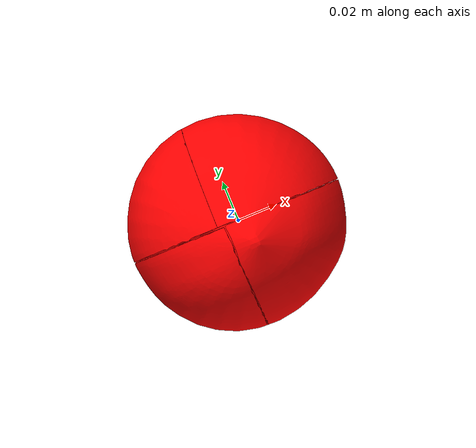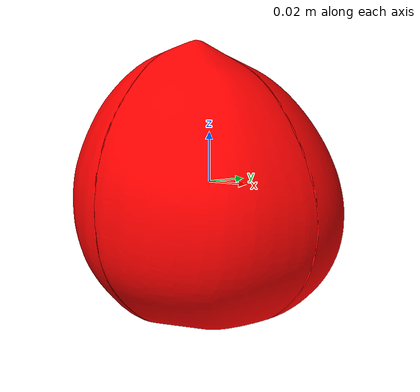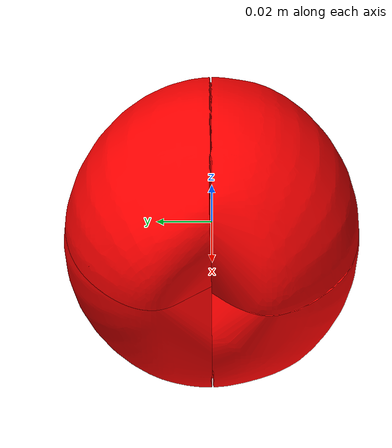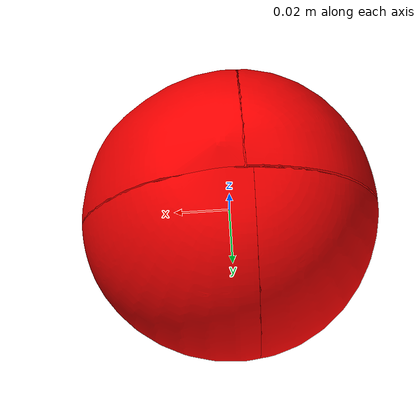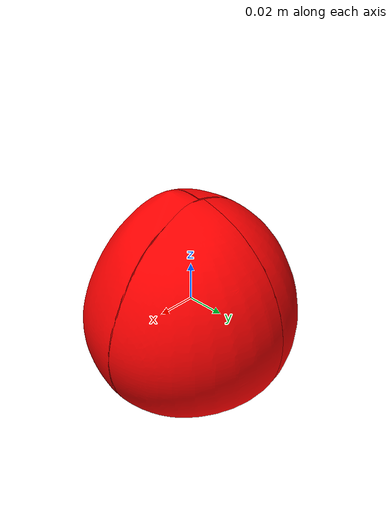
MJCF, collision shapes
<?xml version="1.0" ?>
<mujoco model="honey_peach">
	<compiler meshdir="honey_peach/meshes" texturedir="honey_peach/textures" angle="radian" autolimits="true" balanceinertia="true" boundmass="0.000001" boundinertia="0.000001"/>
	<default>
		<default class="visual">
			<geom contype="0" conaffinity="0"/>
		</default>
		<default class="collision">
			<geom rgba="1.0 0.0 0.0 0.0"/>
		</default>
	</default>
	<asset>
		<mesh name="HoneyPeachPeel" file="obj/HoneyPeachPeel.obj" scale="1.0 1.0 1.0"/>
		<mesh name="HoneyPeachPeel_001" file="stl/HoneyPeachPeel_001.stl" scale="1.0 1.0 1.0"/>
		<mesh name="HoneyPeachPeel_002" file="stl/HoneyPeachPeel_002.stl" scale="1.0 1.0 1.0"/>
		<mesh name="HoneyPeachPeel_003" file="stl/HoneyPeachPeel_003.stl" scale="1.0 1.0 1.0"/>
		<mesh name="HoneyPeachPeel_004" file="stl/HoneyPeachPeel_004.stl" scale="1.0 1.0 1.0"/>
		<mesh name="HoneyPeachFlesh" file="obj/HoneyPeachFlesh.obj" scale="1.0 1.0 1.0"/>
		<mesh name="HoneyPeachFlesh_001" file="stl/HoneyPeachFlesh_001.stl" scale="1.0 1.0 1.0"/>
		<mesh name="HoneyPeachFlesh_002" file="stl/HoneyPeachFlesh_002.stl" scale="1.0 1.0 1.0"/>
		<mesh name="HoneyPeachFlesh_003" file="stl/HoneyPeachFlesh_003.stl" scale="1.0 1.0 1.0"/>
		<mesh name="HoneyPeachFlesh_004" file="stl/HoneyPeachFlesh_004.stl" scale="1.0 1.0 1.0"/>
		<mesh name="HoneyPeachSeed" file="obj/HoneyPeachSeed.obj" scale="1.0 1.0 1.0"/>
		<mesh name="HoneyPeachSeed_001" file="stl/HoneyPeachSeed_001.stl" scale="1.0 1.0 1.0"/>
		<material name="M_HoneyPeachPeel" texture="T_HoneyPeachPeel"/>
		<material name="M_HoneyPeachFlesh" texture="T_HoneyPeachFlesh"/>
		<material name="M_HoneyPeachSeed" texture="T_HoneyPeachSeed"/>
		<texture name="T_HoneyPeachPeel" type="2d" file="T_HoneyPeachPeel.png"/>
		<texture name="T_HoneyPeachFlesh" type="2d" file="T_HoneyPeachFlesh.png"/>
		<texture name="T_HoneyPeachSeed" type="2d" file="T_HoneyPeachSeed.png"/>
	</asset>
	<worldbody>
		<body name="honey_peach" pos="0.0 0.0 0.0" quat="1.0 0.0 0.0 0.0">
			<body name="honey_peach_peel" pos="0.0 0.0 0.0" quat="1.0 0.0 0.0 0.0">
				<inertial mass="1.2212930917739868" pos="-0.0008010617457330227 -0.0005311282002367079 -0.005409484729170799" quat="-0.32978957891464233 0.41349121928215027 0.38312044739723206 0.7572863101959229" diaginertia="0.0013328577624633908 0.0014087659073993564 0.0014269620878621936"/>
				<geom name="HoneyPeachPeel" type="mesh" pos="0.0 0.0 0.0" quat="1.0 0.0 0.0 0.0" mesh="HoneyPeachPeel" material="M_HoneyPeachPeel" class="visual"/>
				<geom name="HoneyPeachPeel_001" type="mesh" pos="0.0 0.0 0.0" quat="1.0 0.0 0.0 0.0" mesh="HoneyPeachPeel_001" class="collision"/>
				<geom name="HoneyPeachPeel_002" type="mesh" pos="0.0 0.0 0.0" quat="1.0 0.0 0.0 0.0" mesh="HoneyPeachPeel_002" class="collision"/>
				<geom name="HoneyPeachPeel_003" type="mesh" pos="0.0 0.0 0.0" quat="1.0 0.0 0.0 0.0" mesh="HoneyPeachPeel_003" class="collision"/>
				<geom name="HoneyPeachPeel_004" type="mesh" pos="0.0 0.0 0.0" quat="1.0 0.0 0.0 0.0" mesh="HoneyPeachPeel_004" class="collision"/>
			</body>
			<body name="honey_peach_seed" pos="0.0 0.0 0.0" quat="1.0 0.0 0.0 0.0">
				<inertial mass="0.026742203161120415" pos="-0.0030022545251995325 -0.001973856473341584 -0.0005645074415951967" quat="0.4645628035068512 0.5593990087509155 -0.42824655771255493 0.5365249514579773" diaginertia="2.889516963477945e-06 5.144435363035882e-06 5.932067779212957e-06"/>
				<geom name="HoneyPeachSeed" type="mesh" pos="0.0 0.0 0.0" quat="1.0 0.0 0.0 0.0" mesh="HoneyPeachSeed" material="M_HoneyPeachSeed" class="visual"/>
				<geom name="HoneyPeachSeed_001" type="mesh" pos="0.0 0.0 0.0" quat="1.0 0.0 0.0 0.0" mesh="HoneyPeachSeed_001" class="collision"/>
			</body>
			<body name="honey_peach_flesh" pos="0.0 0.0 0.0" quat="1.0 0.0 0.0 0.0">
				<inertial mass="0.5572090148925781" pos="-0.0007829375099390745 -0.0005135117680765688 -0.004864256829023361" quat="-0.31803879141807556 0.40867486596107483 0.36824411153793335 0.7721608877182007" diaginertia="0.000571166689042002 0.0006024930626153946 0.0006104846834205091"/>
				<geom name="HoneyPeachFlesh" type="mesh" pos="0.0 0.0 0.0" quat="1.0 0.0 0.0 0.0" mesh="HoneyPeachFlesh" material="M_HoneyPeachFlesh" class="visual"/>
				<geom name="HoneyPeachFlesh_001" type="mesh" pos="0.0 0.0 0.0" quat="1.0 0.0 0.0 0.0" mesh="HoneyPeachFlesh_001" class="collision"/>
				<geom name="HoneyPeachFlesh_002" type="mesh" pos="0.0 0.0 0.0" quat="1.0 0.0 0.0 0.0" mesh="HoneyPeachFlesh_002" class="collision"/>
				<geom name="HoneyPeachFlesh_003" type="mesh" pos="0.0 0.0 0.0" quat="1.0 0.0 0.0 0.0" mesh="HoneyPeachFlesh_003" class="collision"/>
				<geom name="HoneyPeachFlesh_004" type="mesh" pos="0.0 0.0 0.0" quat="1.0 0.0 0.0 0.0" mesh="HoneyPeachFlesh_004" class="collision"/>
			</body>
		</body>
	</worldbody>
	<equality/>
</mujoco>
